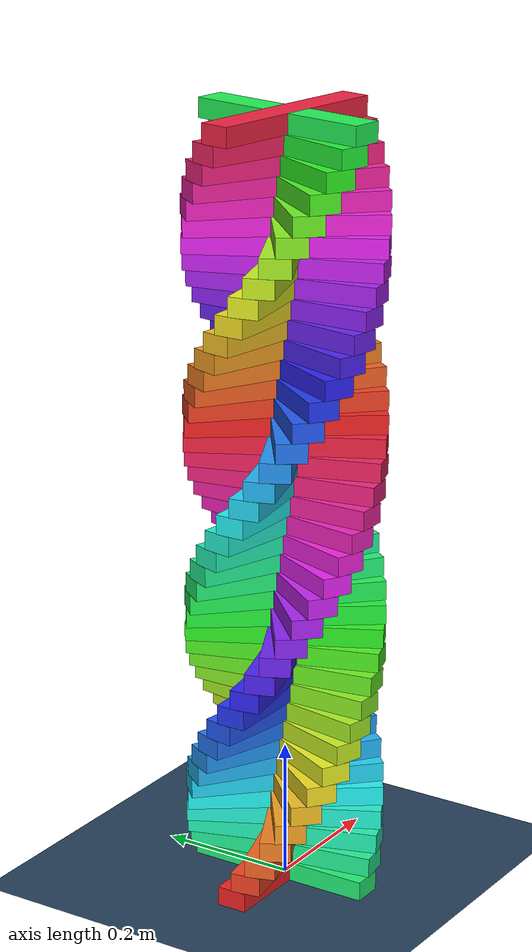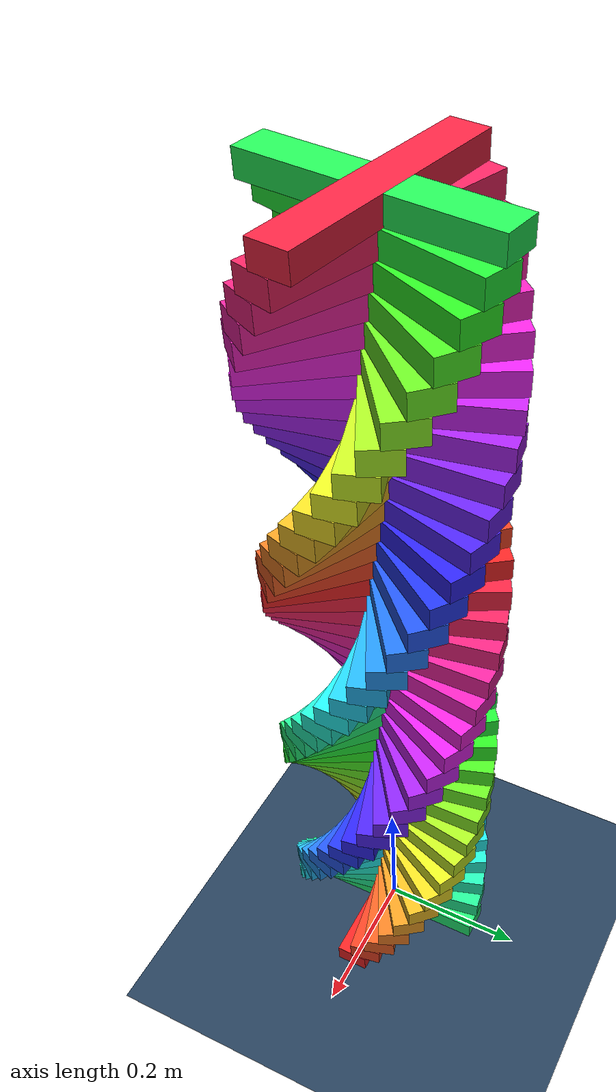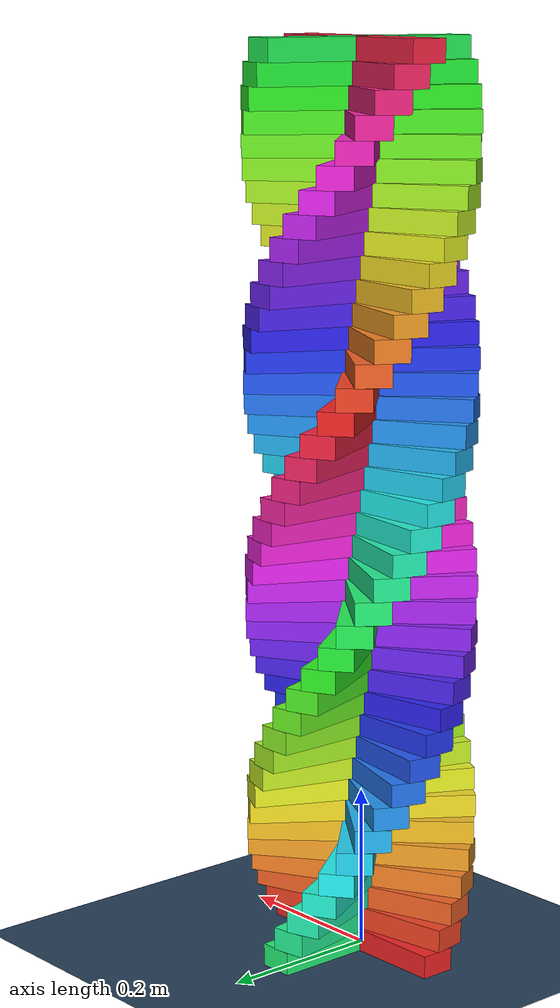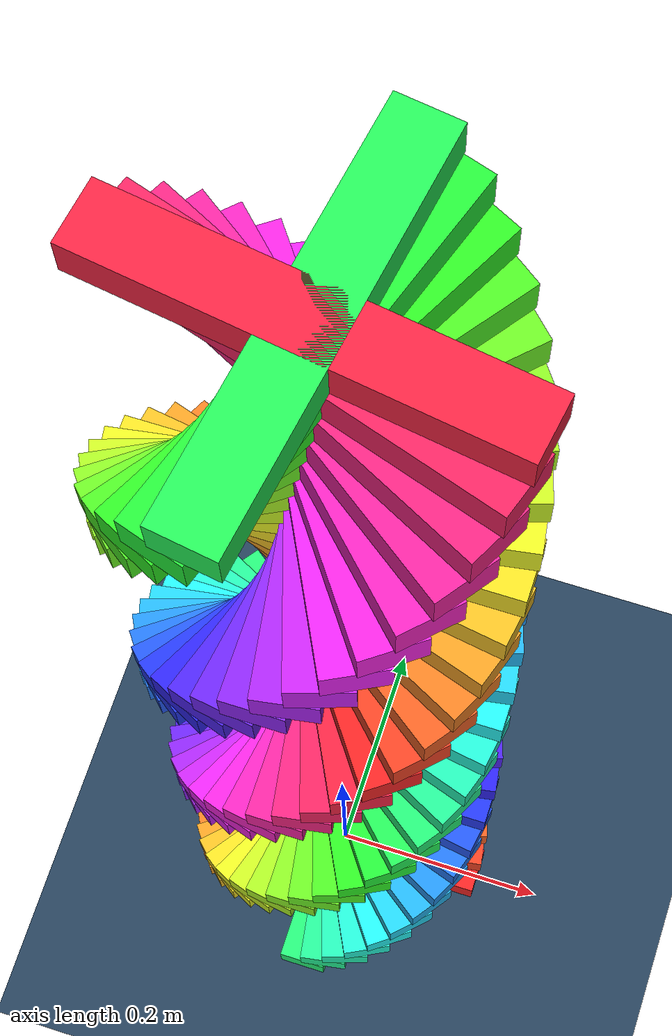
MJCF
<mujoco>
  <visual>
    <headlight diffuse="0.6 0.6 0.6" ambient="0.1 0.1 0.1" specular="0 0 0"/>
    <rgba haze="0.15 0.25 0.35 1"/>
    <global azimuth="120" elevation="-20"/>
  </visual>
  <asset>
    <texture type="skybox" builtin="gradient" rgb1="0.3 0.5 0.7" rgb2="0 0 0" width="512" height="3072"/>
    <texture type="2d" name="groundplane" builtin="checker" mark="edge" rgb1="0.2 0.3 0.4" rgb2="0.1 0.2 0.3" markrgb="0.8 0.8 0.8" width="300" height="300"/>
    <material name="groundplane" texture="groundplane" texuniform="true" texrepeat="5 5" reflectance="0.2"/>
  </asset>
  <worldbody>
    <light pos="0 0 1.5" dir="0 0 -1" directional="true"/>
    <geom name="floor" size="0 0 0.05" type="plane" material="groundplane"/>
    <body pos="0 0 0.0140" euler="0 0 0.0">
      <geom type="box" size="0.1400 0.0220 0.0140" rgba="0.950 0.143 0.143 1"/>
      <freejoint/>
    </body>
    <body pos="0 0 0.0140" euler="0 0 90.0">
      <geom type="box" size="0.1400 0.0220 0.0140" rgba="0.143 0.950 0.466 1"/>
      <freejoint/>
    </body>
    <body pos="0 0 0.0420" euler="0 0 9.0">
      <geom type="box" size="0.1400 0.0220 0.0140" rgba="0.950 0.264 0.143 1"/>
      <freejoint/>
    </body>
    <body pos="0 0 0.0420" euler="0 0 99.0">
      <geom type="box" size="0.1400 0.0220 0.0140" rgba="0.143 0.950 0.587 1"/>
      <freejoint/>
    </body>
    <body pos="0 0 0.0700" euler="0 0 18.0">
      <geom type="box" size="0.1400 0.0220 0.0140" rgba="0.950 0.385 0.143 1"/>
      <freejoint/>
    </body>
    <body pos="0 0 0.0700" euler="0 0 108.0">
      <geom type="box" size="0.1400 0.0220 0.0140" rgba="0.143 0.950 0.708 1"/>
      <freejoint/>
    </body>
    <body pos="0 0 0.0980" euler="0 0 27.0">
      <geom type="box" size="0.1400 0.0220 0.0140" rgba="0.950 0.506 0.143 1"/>
      <freejoint/>
    </body>
    <body pos="0 0 0.0980" euler="0 0 117.0">
      <geom type="box" size="0.1400 0.0220 0.0140" rgba="0.143 0.950 0.829 1"/>
      <freejoint/>
    </body>
    <body pos="0 0 0.1260" euler="0 0 36.0">
      <geom type="box" size="0.1400 0.0220 0.0140" rgba="0.950 0.627 0.143 1"/>
      <freejoint/>
    </body>
    <body pos="0 0 0.1260" euler="0 0 126.0">
      <geom type="box" size="0.1400 0.0220 0.0140" rgba="0.143 0.950 0.950 1"/>
      <freejoint/>
    </body>
    <body pos="0 0 0.1540" euler="0 0 45.0">
      <geom type="box" size="0.1400 0.0220 0.0140" rgba="0.950 0.748 0.143 1"/>
      <freejoint/>
    </body>
    <body pos="0 0 0.1540" euler="0 0 135.0">
      <geom type="box" size="0.1400 0.0220 0.0140" rgba="0.143 0.829 0.950 1"/>
      <freejoint/>
    </body>
    <body pos="0 0 0.1820" euler="0 0 54.0">
      <geom type="box" size="0.1400 0.0220 0.0140" rgba="0.950 0.869 0.143 1"/>
      <freejoint/>
    </body>
    <body pos="0 0 0.1820" euler="0 0 144.0">
      <geom type="box" size="0.1400 0.0220 0.0140" rgba="0.143 0.708 0.950 1"/>
      <freejoint/>
    </body>
    <body pos="0 0 0.2100" euler="0 0 63.0">
      <geom type="box" size="0.1400 0.0220 0.0140" rgba="0.910 0.950 0.143 1"/>
      <freejoint/>
    </body>
    <body pos="0 0 0.2100" euler="0 0 153.0">
      <geom type="box" size="0.1400 0.0220 0.0140" rgba="0.143 0.587 0.950 1"/>
      <freejoint/>
    </body>
    <body pos="0 0 0.2380" euler="0 0 72.0">
      <geom type="box" size="0.1400 0.0220 0.0140" rgba="0.788 0.950 0.143 1"/>
      <freejoint/>
    </body>
    <body pos="0 0 0.2380" euler="0 0 162.0">
      <geom type="box" size="0.1400 0.0220 0.0140" rgba="0.143 0.465 0.950 1"/>
      <freejoint/>
    </body>
    <body pos="0 0 0.2660" euler="0 0 81.0">
      <geom type="box" size="0.1400 0.0220 0.0140" rgba="0.667 0.950 0.143 1"/>
      <freejoint/>
    </body>
    <body pos="0 0 0.2660" euler="0 0 171.0">
      <geom type="box" size="0.1400 0.0220 0.0140" rgba="0.143 0.344 0.950 1"/>
      <freejoint/>
    </body>
    <body pos="0 0 0.2940" euler="0 0 90.0">
      <geom type="box" size="0.1400 0.0220 0.0140" rgba="0.546 0.950 0.143 1"/>
      <freejoint/>
    </body>
    <body pos="0 0 0.2940" euler="0 0 180.0">
      <geom type="box" size="0.1400 0.0220 0.0140" rgba="0.143 0.223 0.950 1"/>
      <freejoint/>
    </body>
    <body pos="0 0 0.3220" euler="0 0 99.0">
      <geom type="box" size="0.1400 0.0220 0.0140" rgba="0.425 0.950 0.143 1"/>
      <freejoint/>
    </body>
    <body pos="0 0 0.3220" euler="0 0 189.0">
      <geom type="box" size="0.1400 0.0220 0.0140" rgba="0.183 0.143 0.950 1"/>
      <freejoint/>
    </body>
    <body pos="0 0 0.3500" euler="0 0 108.0">
      <geom type="box" size="0.1400 0.0220 0.0140" rgba="0.304 0.950 0.143 1"/>
      <freejoint/>
    </body>
    <body pos="0 0 0.3500" euler="0 0 198.0">
      <geom type="box" size="0.1400 0.0220 0.0140" rgba="0.304 0.143 0.950 1"/>
      <freejoint/>
    </body>
    <body pos="0 0 0.3780" euler="0 0 117.0">
      <geom type="box" size="0.1400 0.0220 0.0140" rgba="0.183 0.950 0.143 1"/>
      <freejoint/>
    </body>
    <body pos="0 0 0.3780" euler="0 0 207.0">
      <geom type="box" size="0.1400 0.0220 0.0140" rgba="0.425 0.143 0.950 1"/>
      <freejoint/>
    </body>
    <body pos="0 0 0.4060" euler="0 0 126.0">
      <geom type="box" size="0.1400 0.0220 0.0140" rgba="0.143 0.950 0.223 1"/>
      <freejoint/>
    </body>
    <body pos="0 0 0.4060" euler="0 0 216.0">
      <geom type="box" size="0.1400 0.0220 0.0140" rgba="0.546 0.143 0.950 1"/>
      <freejoint/>
    </body>
    <body pos="0 0 0.4340" euler="0 0 135.0">
      <geom type="box" size="0.1400 0.0220 0.0140" rgba="0.143 0.950 0.344 1"/>
      <freejoint/>
    </body>
    <body pos="0 0 0.4340" euler="0 0 225.0">
      <geom type="box" size="0.1400 0.0220 0.0140" rgba="0.667 0.143 0.950 1"/>
      <freejoint/>
    </body>
    <body pos="0 0 0.4620" euler="0 0 144.0">
      <geom type="box" size="0.1400 0.0220 0.0140" rgba="0.143 0.950 0.466 1"/>
      <freejoint/>
    </body>
    <body pos="0 0 0.4620" euler="0 0 234.0">
      <geom type="box" size="0.1400 0.0220 0.0140" rgba="0.789 0.143 0.950 1"/>
      <freejoint/>
    </body>
    <body pos="0 0 0.4900" euler="0 0 153.0">
      <geom type="box" size="0.1400 0.0220 0.0140" rgba="0.143 0.950 0.587 1"/>
      <freejoint/>
    </body>
    <body pos="0 0 0.4900" euler="0 0 243.0">
      <geom type="box" size="0.1400 0.0220 0.0140" rgba="0.910 0.143 0.950 1"/>
      <freejoint/>
    </body>
    <body pos="0 0 0.5180" euler="0 0 162.0">
      <geom type="box" size="0.1400 0.0220 0.0140" rgba="0.143 0.950 0.708 1"/>
      <freejoint/>
    </body>
    <body pos="0 0 0.5180" euler="0 0 252.0">
      <geom type="box" size="0.1400 0.0220 0.0140" rgba="0.950 0.143 0.869 1"/>
      <freejoint/>
    </body>
    <body pos="0 0 0.5460" euler="0 0 171.0">
      <geom type="box" size="0.1400 0.0220 0.0140" rgba="0.143 0.950 0.829 1"/>
      <freejoint/>
    </body>
    <body pos="0 0 0.5460" euler="0 0 261.0">
      <geom type="box" size="0.1400 0.0220 0.0140" rgba="0.950 0.143 0.748 1"/>
      <freejoint/>
    </body>
    <body pos="0 0 0.5740" euler="0 0 180.0">
      <geom type="box" size="0.1400 0.0220 0.0140" rgba="0.143 0.950 0.950 1"/>
      <freejoint/>
    </body>
    <body pos="0 0 0.5740" euler="0 0 270.0">
      <geom type="box" size="0.1400 0.0220 0.0140" rgba="0.950 0.143 0.627 1"/>
      <freejoint/>
    </body>
    <body pos="0 0 0.6020" euler="0 0 189.0">
      <geom type="box" size="0.1400 0.0220 0.0140" rgba="0.143 0.829 0.950 1"/>
      <freejoint/>
    </body>
    <body pos="0 0 0.6020" euler="0 0 279.0">
      <geom type="box" size="0.1400 0.0220 0.0140" rgba="0.950 0.143 0.506 1"/>
      <freejoint/>
    </body>
    <body pos="0 0 0.6300" euler="0 0 198.0">
      <geom type="box" size="0.1400 0.0220 0.0140" rgba="0.143 0.708 0.950 1"/>
      <freejoint/>
    </body>
    <body pos="0 0 0.6300" euler="0 0 288.0">
      <geom type="box" size="0.1400 0.0220 0.0140" rgba="0.950 0.143 0.385 1"/>
      <freejoint/>
    </body>
    <body pos="0 0 0.6580" euler="0 0 207.0">
      <geom type="box" size="0.1400 0.0220 0.0140" rgba="0.143 0.587 0.950 1"/>
      <freejoint/>
    </body>
    <body pos="0 0 0.6580" euler="0 0 297.0">
      <geom type="box" size="0.1400 0.0220 0.0140" rgba="0.950 0.143 0.264 1"/>
      <freejoint/>
    </body>
    <body pos="0 0 0.6860" euler="0 0 216.0">
      <geom type="box" size="0.1400 0.0220 0.0140" rgba="0.143 0.466 0.950 1"/>
      <freejoint/>
    </body>
    <body pos="0 0 0.6860" euler="0 0 306.0">
      <geom type="box" size="0.1400 0.0220 0.0140" rgba="0.950 0.143 0.143 1"/>
      <freejoint/>
    </body>
    <body pos="0 0 0.7140" euler="0 0 225.0">
      <geom type="box" size="0.1400 0.0220 0.0140" rgba="0.143 0.344 0.950 1"/>
      <freejoint/>
    </body>
    <body pos="0 0 0.7140" euler="0 0 315.0">
      <geom type="box" size="0.1400 0.0220 0.0140" rgba="0.950 0.264 0.143 1"/>
      <freejoint/>
    </body>
    <body pos="0 0 0.7420" euler="0 0 234.0">
      <geom type="box" size="0.1400 0.0220 0.0140" rgba="0.143 0.223 0.950 1"/>
      <freejoint/>
    </body>
    <body pos="0 0 0.7420" euler="0 0 324.0">
      <geom type="box" size="0.1400 0.0220 0.0140" rgba="0.950 0.385 0.143 1"/>
      <freejoint/>
    </body>
    <body pos="0 0 0.7700" euler="0 0 243.0">
      <geom type="box" size="0.1400 0.0220 0.0140" rgba="0.183 0.143 0.950 1"/>
      <freejoint/>
    </body>
    <body pos="0 0 0.7700" euler="0 0 333.0">
      <geom type="box" size="0.1400 0.0220 0.0140" rgba="0.950 0.506 0.143 1"/>
      <freejoint/>
    </body>
    <body pos="0 0 0.7980" euler="0 0 252.0">
      <geom type="box" size="0.1400 0.0220 0.0140" rgba="0.304 0.143 0.950 1"/>
      <freejoint/>
    </body>
    <body pos="0 0 0.7980" euler="0 0 342.0">
      <geom type="box" size="0.1400 0.0220 0.0140" rgba="0.950 0.627 0.143 1"/>
      <freejoint/>
    </body>
    <body pos="0 0 0.8260" euler="0 0 261.0">
      <geom type="box" size="0.1400 0.0220 0.0140" rgba="0.425 0.143 0.950 1"/>
      <freejoint/>
    </body>
    <body pos="0 0 0.8260" euler="0 0 351.0">
      <geom type="box" size="0.1400 0.0220 0.0140" rgba="0.950 0.748 0.143 1"/>
      <freejoint/>
    </body>
    <body pos="0 0 0.8540" euler="0 0 270.0">
      <geom type="box" size="0.1400 0.0220 0.0140" rgba="0.546 0.143 0.950 1"/>
      <freejoint/>
    </body>
    <body pos="0 0 0.8540" euler="0 0 360.0">
      <geom type="box" size="0.1400 0.0220 0.0140" rgba="0.950 0.869 0.143 1"/>
      <freejoint/>
    </body>
    <body pos="0 0 0.8820" euler="0 0 279.0">
      <geom type="box" size="0.1400 0.0220 0.0140" rgba="0.667 0.143 0.950 1"/>
      <freejoint/>
    </body>
    <body pos="0 0 0.8820" euler="0 0 369.0">
      <geom type="box" size="0.1400 0.0220 0.0140" rgba="0.910 0.950 0.143 1"/>
      <freejoint/>
    </body>
    <body pos="0 0 0.9100" euler="0 0 288.0">
      <geom type="box" size="0.1400 0.0220 0.0140" rgba="0.789 0.143 0.950 1"/>
      <freejoint/>
    </body>
    <body pos="0 0 0.9100" euler="0 0 378.0">
      <geom type="box" size="0.1400 0.0220 0.0140" rgba="0.788 0.950 0.143 1"/>
      <freejoint/>
    </body>
    <body pos="0 0 0.9380" euler="0 0 297.0">
      <geom type="box" size="0.1400 0.0220 0.0140" rgba="0.910 0.143 0.950 1"/>
      <freejoint/>
    </body>
    <body pos="0 0 0.9380" euler="0 0 387.0">
      <geom type="box" size="0.1400 0.0220 0.0140" rgba="0.667 0.950 0.143 1"/>
      <freejoint/>
    </body>
    <body pos="0 0 0.9660" euler="0 0 306.0">
      <geom type="box" size="0.1400 0.0220 0.0140" rgba="0.950 0.143 0.869 1"/>
      <freejoint/>
    </body>
    <body pos="0 0 0.9660" euler="0 0 396.0">
      <geom type="box" size="0.1400 0.0220 0.0140" rgba="0.546 0.950 0.143 1"/>
      <freejoint/>
    </body>
    <body pos="0 0 0.9940" euler="0 0 315.0">
      <geom type="box" size="0.1400 0.0220 0.0140" rgba="0.950 0.143 0.748 1"/>
      <freejoint/>
    </body>
    <body pos="0 0 0.9940" euler="0 0 405.0">
      <geom type="box" size="0.1400 0.0220 0.0140" rgba="0.425 0.950 0.143 1"/>
      <freejoint/>
    </body>
    <body pos="0 0 1.0220" euler="0 0 324.0">
      <geom type="box" size="0.1400 0.0220 0.0140" rgba="0.950 0.143 0.627 1"/>
      <freejoint/>
    </body>
    <body pos="0 0 1.0220" euler="0 0 414.0">
      <geom type="box" size="0.1400 0.0220 0.0140" rgba="0.304 0.950 0.143 1"/>
      <freejoint/>
    </body>
    <body pos="0 0 1.0500" euler="0 0 333.0">
      <geom type="box" size="0.1400 0.0220 0.0140" rgba="0.950 0.143 0.506 1"/>
      <freejoint/>
    </body>
    <body pos="0 0 1.0500" euler="0 0 423.0">
      <geom type="box" size="0.1400 0.0220 0.0140" rgba="0.183 0.950 0.143 1"/>
      <freejoint/>
    </body>
    <body pos="0 0 1.0780" euler="0 0 342.0">
      <geom type="box" size="0.1400 0.0220 0.0140" rgba="0.950 0.143 0.385 1"/>
      <freejoint/>
    </body>
    <body pos="0 0 1.0780" euler="0 0 432.0">
      <geom type="box" size="0.1400 0.0220 0.0140" rgba="0.143 0.950 0.223 1"/>
      <freejoint/>
    </body>
    <body pos="0 0 1.1060" euler="0 0 351.0">
      <geom type="box" size="0.1400 0.0220 0.0140" rgba="0.950 0.143 0.264 1"/>
      <freejoint/>
    </body>
    <body pos="0 0 1.1060" euler="0 0 441.0">
      <geom type="box" size="0.1400 0.0220 0.0140" rgba="0.143 0.950 0.344 1"/>
      <freejoint/>
    </body>
  </worldbody>
</mujoco>
